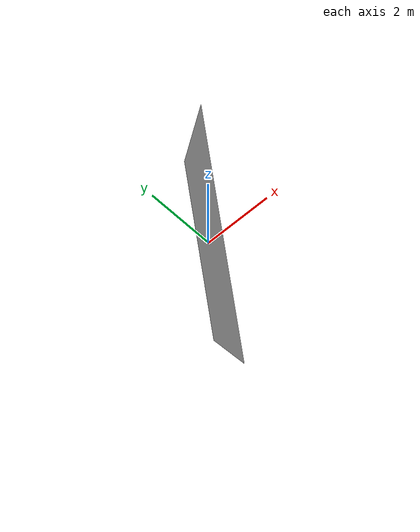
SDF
<?xml version="1.0" encoding="UTF-8"?>
<sdf version="1.4">
   <model name="PlateTexutre">
      <static>true</static>
      <link name="link">
         <collision name="collision">
            <geometry>
               <plane>
                  <normal>0 0 1</normal>
                  <size>5 5</size>
               </plane>
            </geometry>
            <surface>
               <friction>
                  <ode>
                     <mu>100</mu>
                     <mu2>50</mu2>
                  </ode>
               </friction>
            </surface>
         </collision>
         <visual name="visual">
            <pose>0 0 0 -1.57 1 1</pose>
            <cast_shadows>false</cast_shadows>
            <geometry>
               <plane>
                  <normal>0 0 1</normal>
                  <size>5 5</size>
               </plane>
            </geometry>
            <material>
               <script>
                  <uri>model://PlateTexture/materials/scripts</uri>
                  <uri>model://PlateTexture/materials/textures/</uri>
                  <name>PlateTexutre/Image</name>
               </script>
            </material>
         </visual>
      </link>
   </model>
</sdf>
